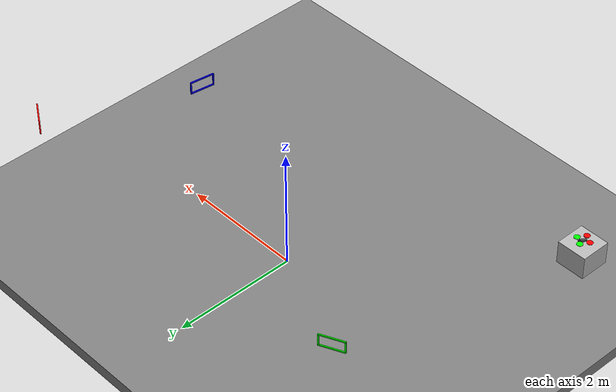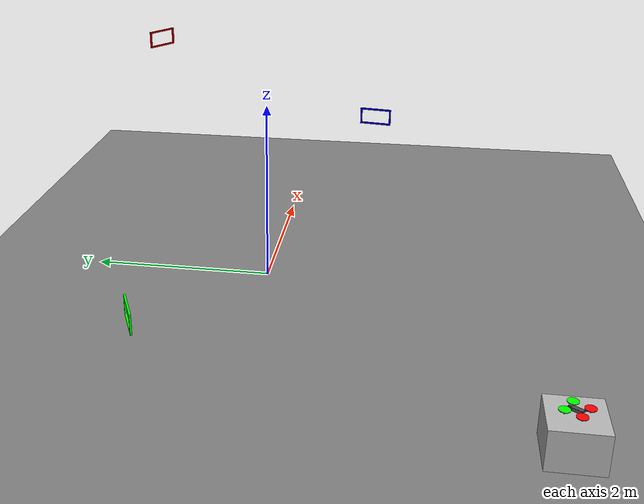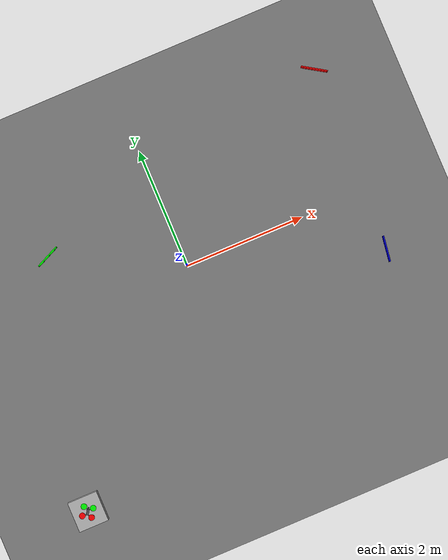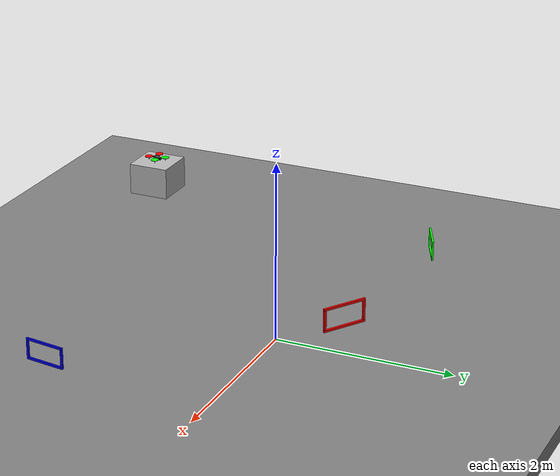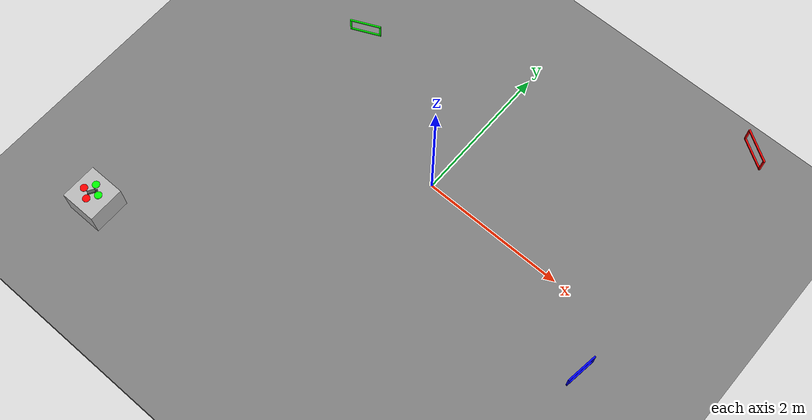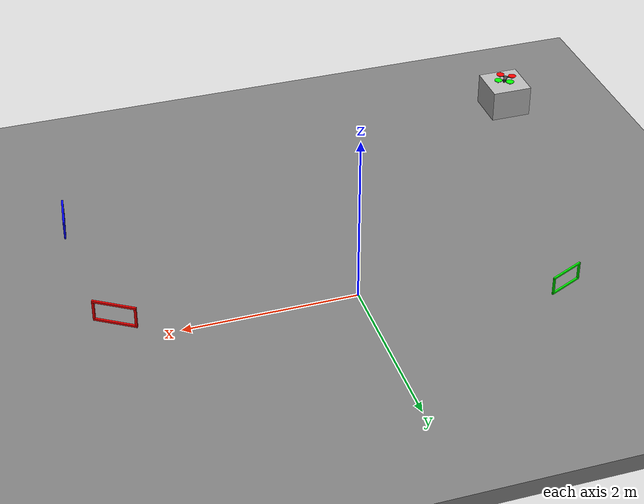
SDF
<?xml version="1.0" ?>
<sdf version="1.5">

<world name="default">

<!-- A global light source -->
<scene>
    <ambient>0.5 0.5 0.5 1.0</ambient>
    <shadows>true</shadows>
</scene>

<include>
    <uri>model://sun</uri>
</include>

<!-- A ground plane -->
<include>
    <uri>model://ground_plane</uri>
</include>

<!-- Coordinates -->
<spherical_coordinates>
    <surface_model>EARTH_WGS84</surface_model>
    <latitude_deg>0</latitude_deg>
    <longitude_deg>0</longitude_deg>
    <elevation>0</elevation>
    <heading_deg>0</heading_deg>
</spherical_coordinates>

<!-- Camera -->
    <gui fullscreen='0'>
    <camera name='user_camera'>
    <pose>7.8971 -5.86361 6.86576 0 0.507643 2.3202</pose>
    <view_controller>orbit</view_controller>
    <projection_type>perspective</projection_type>
    </camera>
</gui>

<!-- Drone -->
<include>
    <name>abejorro</name>
    <uri>model://drone</uri>
    <pose>-3 -3 0.55 0 0 1</pose>
    <static>false</static>
</include>

<!-- Base de aterrizaje -->
<include>
    <name>base_drone</name>
    <uri>model://base_drone</uri>
    <pose>-3 -3 0.26 0 0 0</pose>
</include>

<!-- Area de vuelo -->
<include>
    <name>floor</name>
    <uri>model://floor</uri>
    <pose>0 0 0.025 0 0 0</pose>
</include>

<!-- Frames -->
<include>
    <name>frame_red</name>
    <uri>model://frame_red</uri>
    <pose>3 2 2 0 0 1</pose>
</include>

<include>
    <name>frame_green</name>
    <uri>model://frame_green</uri>
    <pose>-2 1 0.5 0 0 2</pose>
</include>

<include>
    <name>frame_blue</name>
    <uri>model://frame_blue</uri>
    <pose>3 -1 1 0 0 3</pose>
</include>

</world>
</sdf>

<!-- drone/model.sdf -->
<sdf version="1.5">

<model name="drone">

<static>false</static>

<link name='dronelink'>
    <!-- Rotores en distribucion cuadrada
         situados a 25 cms del centro de gravedad
    -->

    <visual name='fuselaje'>
        <pose>0 0 0 0 0 0</pose>
        <geometry>
          <box>
            <size>0.10 0.04 0.03</size>
          </box>
        </geometry>
        <material>
          <ambient>0.3 0.3 0.3 1</ambient>
          <diffuse>0.3 0.3 0.3 1</diffuse>
        </material>
    </visual>

    <collision name='fuselaje'>
        <pose>0 0 0 0 0 0</pose>
        <geometry>
          <box>
            <size>0.10 0.04 0.03</size>
          </box>
        </geometry>
        <surface>
          <friction>
            <ode>
              <mu>0.1</mu>
              <mu2>0.2</mu2>
              <slip1>1.0</slip1>
              <slip2>1.0</slip2>
            </ode>
          </friction>
        </surface>
    </collision>

    <visual name='camara'>
        <pose>0.065 0 0 0 0 0</pose>
        <geometry>
          <box>
            <size>0.03 0.02 0.02</size>
          </box>
        </geometry>
        <material>
          <ambient>0.2 0.2 0.2 1</ambient>
          <diffuse>0.2 0.2 0.2 1</diffuse>
        </material>
    </visual>

    <collision name='camara'>
        <pose>0.065 0 0 0 0 0</pose>
        <geometry>
          <box>
            <size>0.03 0.02 0.02</size>
          </box>
        </geometry>
        <surface>
          <friction>
            <ode>
              <mu>0.1</mu>
              <mu2>0.2</mu2>
              <slip1>1.0</slip1>
              <slip2>1.0</slip2>
            </ode>
          </friction>
        </surface>
    </collision>

    <visual name='brazo_NE'>
        <pose>0.0550 -0.0346 0 0 0 -1.0472</pose>
        <geometry>
          <box>
            <size>0.08 .01 .01</size>
          </box>
        </geometry>
        <material>
          <ambient>0.3 0.3 0.3 1</ambient>
          <diffuse>0.3 0.3 0.3 1</diffuse>
        </material>
    </visual>

    <collision name='brazo_NE'>
        <pose>0.0550 -0.0346 0 0 0 -1.0472</pose>
        <geometry>
          <box>
            <size>0.08 .01 .01</size>
          </box>
        </geometry>
        <surface>
          <friction>
            <ode>
              <mu>0.1</mu>
              <mu2>0.2</mu2>
              <slip1>1.0</slip1>
              <slip2>1.0</slip2>
            </ode>
          </friction>
        </surface>
    </collision>

    <visual name="motor_NE">
        <pose>0.0750 -0.0750 -0.01 0 0 0</pose>
        <geometry>
            <cylinder>
                <radius>.005</radius>
                <length>.04</length>
            </cylinder>
        </geometry>
        <material>
            <ambient>0 0 0 1</ambient>  <!--color Red Green Blue Alpha [0-1] -->
            <diffuse>0 0 0 1</diffuse>
        </material>
    </visual>

    <collision name="motor_NE">
        <pose>0.0750 -0.0750 -0.01 0 0 0</pose>
        <geometry>
            <cylinder>
                <radius>.005</radius>
                <length>.04</length>
            </cylinder>
        </geometry>
        <surface>
            <friction>
                <ode>
                <mu>100.0</mu>
                <mu2>50.0</mu2>
                <slip1>0.0</slip1>
                <slip2>0.0</slip2>
                </ode>
            </friction>
        </surface>
    </collision>

    <visual name="rotor_NE">
        <pose>0.0750 -0.0750 0.01 0 0 0</pose>
        <geometry>
            <cylinder>
                <radius>0.05</radius>
                <length>.005</length>
            </cylinder>
        </geometry>
	<material>
            <ambient>0 1 0 1</ambient>  <!--color Red Green Blue Alpha [0-1] -->
            <diffuse>0 1 0 1</diffuse>
        </material>
    </visual>

    <collision name="rotor_NE">
        <pose>0.0750 -0.0750 0.01 0 0 0</pose>
        <geometry>
            <cylinder>
                <radius>0.05</radius>
                <length>.005</length>
            </cylinder>
        </geometry>
        <surface>
            <friction>
                <ode>
                <mu>0.1</mu>
                <mu2>0.2</mu2>
                <slip1>1.0</slip1>
                <slip2>1.0</slip2>
                </ode>
            </friction>
        </surface>
    </collision>

    <visual name='brazo_NW'>
        <pose>0.0550 0.0346 0 0 0 1.0472</pose>
        <geometry>
          <box>
            <size>0.08 .01 .01</size>
          </box>
        </geometry>
        <material>
          <ambient>0.3 0.3 0.3 1</ambient>
          <diffuse>0.3 0.3 0.3 1</diffuse>
        </material>
    </visual>

    <collision name='brazo_NW'>
        <pose>0.0550 0.0346 0 0 0 1.0472</pose>
        <geometry>
          <box>
            <size>0.08 .01 .01</size>
          </box>
        </geometry>
        <surface>
          <friction>
            <ode>
              <mu>0.1</mu>
              <mu2>0.2</mu2>
              <slip1>1.0</slip1>
              <slip2>1.0</slip2>
            </ode>
          </friction>
        </surface>
    </collision>

    <visual name="motor_NW">
        <pose>0.0750 0.0750 -0.01 0 0 0</pose>
        <geometry>
            <cylinder>
                <radius>.005</radius>
                <length>.04</length>
            </cylinder>
        </geometry>
        <material>
            <ambient>0 0 0 1</ambient>  <!--color Red Green Blue Alpha [0-1] -->
            <diffuse>0 0 0 1</diffuse>
        </material>
    </visual>

    <collision name="motor_NW">
        <pose>0.0750 0.0750 -0.01 0 0 0</pose>
        <geometry>
            <cylinder>
                <radius>.005</radius>
                <length>.04</length>
            </cylinder>
        </geometry>
        <surface>
            <friction>
                <ode>
                <mu>100.0</mu>
                <mu2>50.0</mu2>
                <slip1>0.0</slip1>
                <slip2>0.0</slip2>
                </ode>
            </friction>
        </surface>
    </collision>

    <visual name="rotor_NW">
        <pose>0.0750 0.0750 0.01 0 0 0</pose>
        <geometry>
            <cylinder>
                <radius>0.05</radius>
                <length>.005</length>
            </cylinder>
        </geometry>
	<material>
            <ambient>0 1 0 1</ambient>  <!--color Red Green Blue Alpha [0-1] -->
            <diffuse>0 1 0 1</diffuse>
        </material>
    </visual>

    <collision name="rotor_NW">
        <pose>0.0750 0.0750 0.01 0 0 0</pose>
        <geometry>
            <cylinder>
                <radius>0.05</radius>
                <length>.005</length>
            </cylinder>
        </geometry>
        <surface>
            <friction>
                <ode>
                <mu>0.1</mu>
                <mu2>0.2</mu2>
                <slip1>1.0</slip1>
                <slip2>1.0</slip2>
                </ode>
            </friction>
        </surface>
    </collision>

    <visual name='brazo_SE'>
        <pose>-0.0550 -0.0346 0 0 0 1.0472</pose>
        <geometry>
          <box>
            <size>0.08 .01 .01</size>
          </box>
        </geometry>
        <material>
          <ambient>0.3 0.3 0.3 1</ambient>
          <diffuse>0.3 0.3 0.3 1</diffuse>
        </material>
    </visual>

    <collision name='brazo_SE'>
        <pose>-0.0550 -0.0346 0 0 0 1.0472</pose>
        <geometry>
          <box>
            <size>0.08 .01 .01</size>
          </box>
        </geometry>
        <surface>
          <friction>
            <ode>
              <mu>0.1</mu>
              <mu2>0.2</mu2>
              <slip1>1.0</slip1>
              <slip2>1.0</slip2>
            </ode>
          </friction>
        </surface>
    </collision>

    <visual name="motor_SE">
        <pose>-0.0750 -0.0750 -0.01 0 0 0</pose>
        <geometry>
            <cylinder>
                <radius>.005</radius>
                <length>.04</length>
            </cylinder>
        </geometry>
        <material>
            <ambient>0 0 0 1</ambient>  <!--color Red Green Blue Alpha [0-1] -->
            <diffuse>0 0 0 1</diffuse>
        </material>
    </visual>

    <collision name="motor_SE">
        <pose>-0.0750 -0.0750 -0.01 0 0 0</pose>
        <geometry>
            <cylinder>
                <radius>.005</radius>
                <length>.04</length>
            </cylinder>
        </geometry>
        <surface>
            <friction>
                <ode>
                <mu>100.0</mu>
                <mu2>50.0</mu2>
                <slip1>0.0</slip1>
                <slip2>0.0</slip2>
                </ode>
            </friction>
        </surface>
    </collision>

    <visual name="rotor_SE">
        <pose>-0.0750 -0.0750 0.01 0 0 0</pose>
        <geometry>
            <cylinder>
                <radius>0.05</radius>
                <length>.005</length>
            </cylinder>
        </geometry>
	<material>
            <ambient>1 0 0 1</ambient>  <!--color Red Green Blue Alpha [0-1] -->
            <diffuse>1 0 0 1</diffuse>
        </material>
    </visual>

    <collision name="rotor_SE">
        <pose>-0.0750 -0.0750 0.01 0 0 0</pose>
        <geometry>
            <cylinder>
                <radius>0.05</radius>
                <length>.005</length>
            </cylinder>
        </geometry>
        <surface>
            <friction>
                <ode>
                <mu>0.1</mu>
                <mu2>0.2</mu2>
                <slip1>1.0</slip1>
                <slip2>1.0</slip2>
                </ode>
            </friction>
        </surface>
    </collision>

    <visual name='brazo_SW'>
        <pose>-0.0550 0.0346 0 0 0 -1.0472</pose>
        <geometry>
          <box>
            <size>0.08 .01 .01</size>
          </box>
        </geometry>
        <material>
          <ambient>0.3 0.3 0.3 1</ambient>
          <diffuse>0.3 0.3 0.3 1</diffuse>
        </material>
    </visual>

    <collision name='brazo_SW'>
        <pose>-0.0550 0.0346 0 0 0 -1.0472</pose>
        <geometry>
          <box>
            <size>0.08 .01 .01</size>
          </box>
        </geometry>
        <surface>
          <friction>
            <ode>
              <mu>0.1</mu>
              <mu2>0.2</mu2>
              <slip1>1.0</slip1>
              <slip2>1.0</slip2>
            </ode>
          </friction>
        </surface>
    </collision>

    <visual name="motor_SW">
        <pose>-0.0750 0.0750 -0.01 0 0 0</pose>
        <geometry>
            <cylinder>
                <radius>.005</radius>
                <length>.04</length>
            </cylinder>
        </geometry>
        <material>
            <ambient>0 0 0 1</ambient>  <!--color Red Green Blue Alpha [0-1] -->
            <diffuse>0 0 0 1</diffuse>
        </material>
    </visual>

    <collision name="motor_SW">
        <pose>-0.0750 0.0750 -0.01 0 0 0</pose>
        <geometry>
            <cylinder>
                <radius>.005</radius>
                <length>.04</length>
            </cylinder>
        </geometry>
        <surface>
            <friction>
                <ode>
                <mu>100.0</mu>
                <mu2>50.0</mu2>
                <slip1>0.0</slip1>
                <slip2>0.0</slip2>
                </ode>
            </friction>
        </surface>
    </collision>

    <visual name="rotor_SW">
        <pose>-0.0750 0.0750 0.01 0 0 0</pose>
        <geometry>
            <cylinder>
                <radius>0.05</radius>
                <length>.005</length>
            </cylinder>
        </geometry>
	<material>
            <ambient>1 0 0 1</ambient>  <!--color Red Green Blue Alpha [0-1] -->
            <diffuse>1 0 0 1</diffuse>
        </material>
    </visual>

    <collision name="rotor_SW">
        <pose>-0.0750 0.0750 0.01 0 0 0</pose>
        <geometry>
            <cylinder>
                <radius>0.05</radius>
                <length>.005</length>
            </cylinder>
        </geometry>
        <surface>
            <friction>
                <ode>
                <mu>0.1</mu>
                <mu2>0.2</mu2>
                <slip1>1.0</slip1>
                <slip2>1.0</slip2>
                </ode>
            </friction>
        </surface>
    </collision>

    <inertial>
        <mass>0.300</mass>

        <inertia>                <!-- http://en.wikipedia.org/wiki/List_of_moments_of_inertia -->
          <ixx>0.001022500</ixx> <!-- for a box: ixx = 1/12 * mass * (y*y + z*z) -->
          <ixy>0.0</ixy>         <!-- for a box: ixy = 0 -->
          <ixz>0.0</ixz>         <!-- for a box: ixz = 0 -->
          <iyy>0.001022500</iyy> <!-- for a box: iyy = 1/12 * mass * (x*x + z*z) -->
          <iyz>0.0</iyz>         <!-- for a box: iyz = 0 -->
          <izz>0.002000000</izz> <!-- for a box: izz = 1/12 * mass * (x*x + y*y) -->
        </inertia>
    </inertial>

</link>

</model>

</sdf>

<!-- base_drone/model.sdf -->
<sdf version="1.7">

<model name="base_drone">
	<static>true</static>
	<link name="link">

	<collision name="collision">

		<geometry>
			<box>
			<size>0.50 0.50 0.50</size>
			</box>
		</geometry>

		<surface>
			<friction>
			<ode>
				<mu>100.0</mu>
				<mu2>50.0</mu2>
				<slip1>0.0</slip1>
				<slip2>0.0</slip2>
			</ode>
			</friction>
		</surface>

	</collision>

	<visual name="visual">
		<geometry>
			<box>
			<size>0.50 0.50 0.50</size>
			</box>
		</geometry>
	</visual>

	</link>
</model>

</sdf>

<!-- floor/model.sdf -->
<sdf version="1.5">

<model name="ground_plane">

<static>true</static>

<link name="link">

  <collision name="collision">

    <geometry>
      <plane>
        <normal>0 0 1</normal>
        <size>200 200</size>
      </plane>
    </geometry>

    <surface>
      <friction>
        <ode>
          <mu>100.0</mu>
          <mu2>50.0</mu2>
          <slip1>0.0</slip1>
          <slip2>0.0</slip2>
        </ode>
      </friction>
    </surface>

  </collision>

  <visual name="visual">

    <cast_shadows>true</cast_shadows>

    <geometry>
      <plane>
        <normal>0 0 1</normal>
        <size>200 200</size>
      </plane>
    </geometry>
    <material>
        <ambient>0.5 0.5 0.5 1</ambient>
        <diffuse>0.5 0.5 0.5 1</diffuse>
    </material>

  </visual>

</link>

</model>
</sdf>

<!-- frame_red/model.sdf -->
<sdf version="1.7">
<model name="frame_red">

<static>true</static>

<link name='framelink'>
    <!-- Marco de 40x20 cms. Borde de 3cms. -->

    <visual name='up'>
        <pose>0 0 0.10 0 0 0</pose>
        <geometry>
          <box>
            <size>0.02 0.42 0.02</size>
          </box>
        </geometry>
        <material>
          <ambient>1 0 0 1</ambient>
          <diffuse>1 0 0 1</diffuse>
        </material>
    </visual>

    <collision name='up'>
        <pose>0 0 0.10 0 0 0</pose>
        <geometry>
          <box>
            <size>0.02 0.42 0.02</size>
          </box>
        </geometry>
        <surface>
          <friction>
            <ode>
              <mu>0.1</mu>
              <mu2>0.2</mu2>
              <slip1>1.0</slip1>
              <slip2>1.0</slip2>
            </ode>
          </friction>
        </surface>
    </collision>

    <visual name='down'>
        <pose>0 0 -0.10 0 0 0</pose>
        <geometry>
          <box>
            <size>0.02 0.42 0.02</size>
          </box>
        </geometry>
        <material>
          <ambient>1 0 0 1</ambient>
          <diffuse>1 0 0 1</diffuse>
        </material>
    </visual>

    <collision name='down'>
        <pose>0 0 -0.10 0 0 0</pose>
        <geometry>
          <box>
            <size>0.02 0.42 0.02</size>
          </box>
        </geometry>
        <surface>
          <friction>
            <ode>
              <mu>0.1</mu>
              <mu2>0.2</mu2>
              <slip1>1.0</slip1>
              <slip2>1.0</slip2>
            </ode>
          </friction>
        </surface>
    </collision>

    <visual name='left'>
        <pose>0 -0.20 0 0 0 0</pose>
        <geometry>
          <box>
            <size>0.02 0.02 0.18</size>
          </box>
        </geometry>
        <material>
          <ambient>1 0 0 1</ambient>
          <diffuse>1 0 0 1</diffuse>
        </material>
    </visual>

    <collision name='left'>
        <pose>0 -0.20 0 0 0 0</pose>
        <geometry>
          <box>
            <size>0.02 0.02 0.18</size>
          </box>
        </geometry>
        <surface>
          <friction>
            <ode>
              <mu>0.1</mu>
              <mu2>0.2</mu2>
              <slip1>1.0</slip1>
              <slip2>1.0</slip2>
            </ode>
          </friction>
        </surface>
    </collision>

    <visual name='right'>
        <pose>0 0.20 0 0 0 0</pose>
        <geometry>
          <box>
            <size>0.02 0.02 0.18</size>
          </box>
        </geometry>
        <material>
          <ambient>1 0 0 1</ambient>
          <diffuse>1 0 0 1</diffuse>
        </material>
    </visual>

    <collision name='right'>
        <pose>0 0.20 0 0 0 0</pose>
        <geometry>
          <box>
            <size>0.02 0.02 0.18</size>
          </box>
        </geometry>
        <surface>
          <friction>
            <ode>
              <mu>0.1</mu>
              <mu2>0.2</mu2>
              <slip1>1.0</slip1>
              <slip2>1.0</slip2>
            </ode>
          </friction>
        </surface>
    </collision>

</link>

</model>

</sdf>

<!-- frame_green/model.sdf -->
<sdf version="1.7">
<model name="frame_green">

<static>true</static>

<link name='framelink'>
    <!-- Marco de 40x20 cms. Borde de 3cms. -->

    <visual name='up'>
        <pose>0 0 0.10 0 0 0</pose>
        <geometry>
          <box>
            <size>0.02 0.42 0.02</size>
          </box>
        </geometry>
        <material>
          <ambient>0 1 0 1</ambient>
          <diffuse>0 1 0 1</diffuse>
        </material>
    </visual>

    <collision name='up'>
        <pose>0 0 0.10 0 0 0</pose>
        <geometry>
          <box>
            <size>0.02 0.42 0.02</size>
          </box>
        </geometry>
        <surface>
          <friction>
            <ode>
              <mu>0.1</mu>
              <mu2>0.2</mu2>
              <slip1>1.0</slip1>
              <slip2>1.0</slip2>
            </ode>
          </friction>
        </surface>
    </collision>

    <visual name='down'>
        <pose>0 0 -0.10 0 0 0</pose>
        <geometry>
          <box>
            <size>0.02 0.42 0.02</size>
          </box>
        </geometry>
        <material>
          <ambient>0 1 0 1</ambient>
          <diffuse>0 1 0 1</diffuse>
        </material>
    </visual>

    <collision name='down'>
        <pose>0 0 -0.10 0 0 0</pose>
        <geometry>
          <box>
            <size>0.02 0.42 0.02</size>
          </box>
        </geometry>
        <surface>
          <friction>
            <ode>
              <mu>0.1</mu>
              <mu2>0.2</mu2>
              <slip1>1.0</slip1>
              <slip2>1.0</slip2>
            </ode>
          </friction>
        </surface>
    </collision>

    <visual name='left'>
        <pose>0 -0.20 0 0 0 0</pose>
        <geometry>
          <box>
            <size>0.02 0.02 0.18</size>
          </box>
        </geometry>
        <material>
          <ambient>0 1 0 1</ambient>
          <diffuse>0 1 0 1</diffuse>
        </material>
    </visual>

    <collision name='left'>
        <pose>0 -0.20 0 0 0 0</pose>
        <geometry>
          <box>
            <size>0.02 0.02 0.18</size>
          </box>
        </geometry>
        <surface>
          <friction>
            <ode>
              <mu>0.1</mu>
              <mu2>0.2</mu2>
              <slip1>1.0</slip1>
              <slip2>1.0</slip2>
            </ode>
          </friction>
        </surface>
    </collision>

    <visual name='right'>
        <pose>0 0.20 0 0 0 0</pose>
        <geometry>
          <box>
            <size>0.02 0.02 0.18</size>
          </box>
        </geometry>
        <material>
          <ambient>0 1 0 1</ambient>
          <diffuse>0 1 0 1</diffuse>
        </material>
    </visual>

    <collision name='right'>
        <pose>0 0.20 0 0 0 0</pose>
        <geometry>
          <box>
            <size>0.02 0.02 0.18</size>
          </box>
        </geometry>
        <surface>
          <friction>
            <ode>
              <mu>0.1</mu>
              <mu2>0.2</mu2>
              <slip1>1.0</slip1>
              <slip2>1.0</slip2>
            </ode>
          </friction>
        </surface>
    </collision>

</link>

</model>

</sdf>

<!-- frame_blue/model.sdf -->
<sdf version="1.6">
<model name="frame_blue">

<static>true</static>

<link name='framelink'>
    <!-- Marco de 40x20 cms. Borde de 3cms. -->

    <visual name='up'>
        <pose>0 0 0.10 0 0 0</pose>
        <geometry>
          <box>
            <size>0.02 0.42 0.02</size>
          </box>
        </geometry>
        <material>
          <ambient>0 0 1 1</ambient>
          <diffuse>0 0 1 1</diffuse>
        </material>
    </visual>

    <collision name='up'>
        <pose>0 0 0.10 0 0 0</pose>
        <geometry>
          <box>
            <size>0.02 0.42 0.02</size>
          </box>
        </geometry>
        <surface>
          <friction>
            <ode>
              <mu>0.1</mu>
              <mu2>0.2</mu2>
              <slip1>1.0</slip1>
              <slip2>1.0</slip2>
            </ode>
          </friction>
        </surface>
    </collision>

    <visual name='down'>
        <pose>0 0 -0.10 0 0 0</pose>
        <geometry>
          <box>
            <size>0.02 0.42 0.02</size>
          </box>
        </geometry>
        <material>
          <ambient>0 0 1 1</ambient>
          <diffuse>0 0 1 1</diffuse>
        </material>
    </visual>

    <collision name='down'>
        <pose>0 0 -0.10 0 0 0</pose>
        <geometry>
          <box>
            <size>0.02 0.42 0.02</size>
          </box>
        </geometry>
        <surface>
          <friction>
            <ode>
              <mu>0.1</mu>
              <mu2>0.2</mu2>
              <slip1>1.0</slip1>
              <slip2>1.0</slip2>
            </ode>
          </friction>
        </surface>
    </collision>

    <visual name='left'>
        <pose>0 -0.20 0 0 0 0</pose>
        <geometry>
          <box>
            <size>0.02 0.02 0.18</size>
          </box>
        </geometry>
        <material>
          <ambient>0 0 1 1</ambient>
          <diffuse>0 0 1 1</diffuse>
        </material>
    </visual>

    <collision name='left'>
        <pose>0 -0.20 0 0 0 0</pose>
        <geometry>
          <box>
            <size>0.02 0.02 0.18</size>
          </box>
        </geometry>
        <surface>
          <friction>
            <ode>
              <mu>0.1</mu>
              <mu2>0.2</mu2>
              <slip1>1.0</slip1>
              <slip2>1.0</slip2>
            </ode>
          </friction>
        </surface>
    </collision>

    <visual name='right'>
        <pose>0 0.20 0 0 0 0</pose>
        <geometry>
          <box>
            <size>0.02 0.02 0.18</size>
          </box>
        </geometry>
        <material>
          <ambient>0 0 1 1</ambient>
          <diffuse>0 0 1 1</diffuse>
        </material>
    </visual>

    <collision name='right'>
        <pose>0 0.20 0 0 0 0</pose>
        <geometry>
          <box>
            <size>0.02 0.02 0.18</size>
          </box>
        </geometry>
        <surface>
          <friction>
            <ode>
              <mu>0.1</mu>
              <mu2>0.2</mu2>
              <slip1>1.0</slip1>
              <slip2>1.0</slip2>
            </ode>
          </friction>
        </surface>
    </collision>

</link>

</model>

</sdf>
